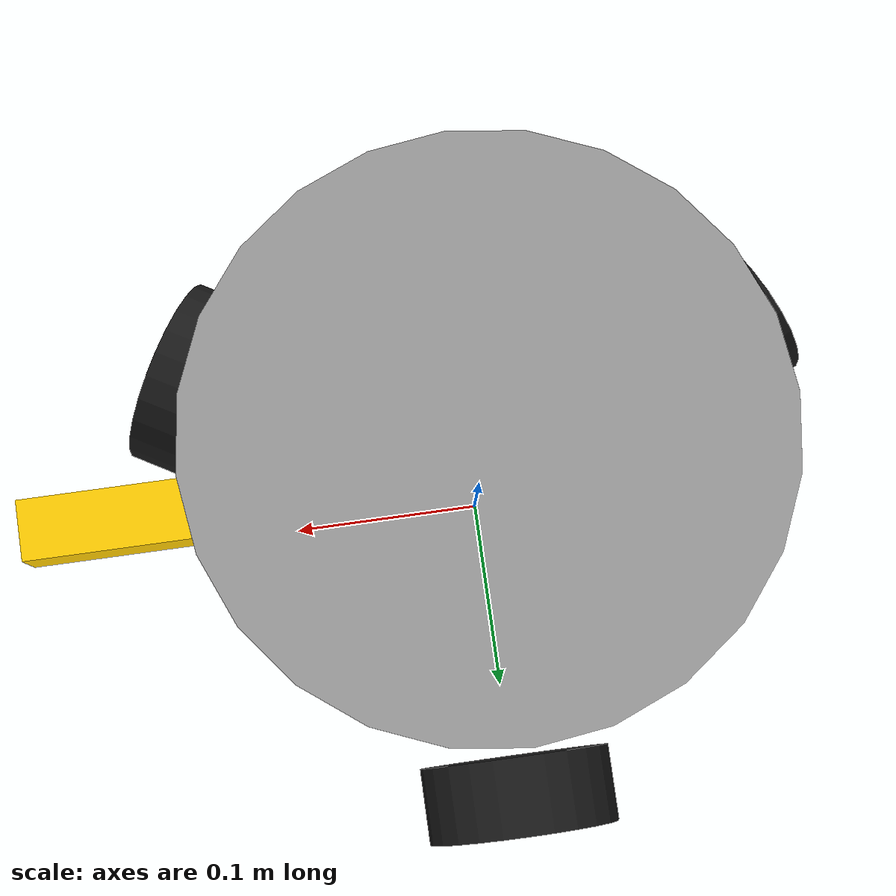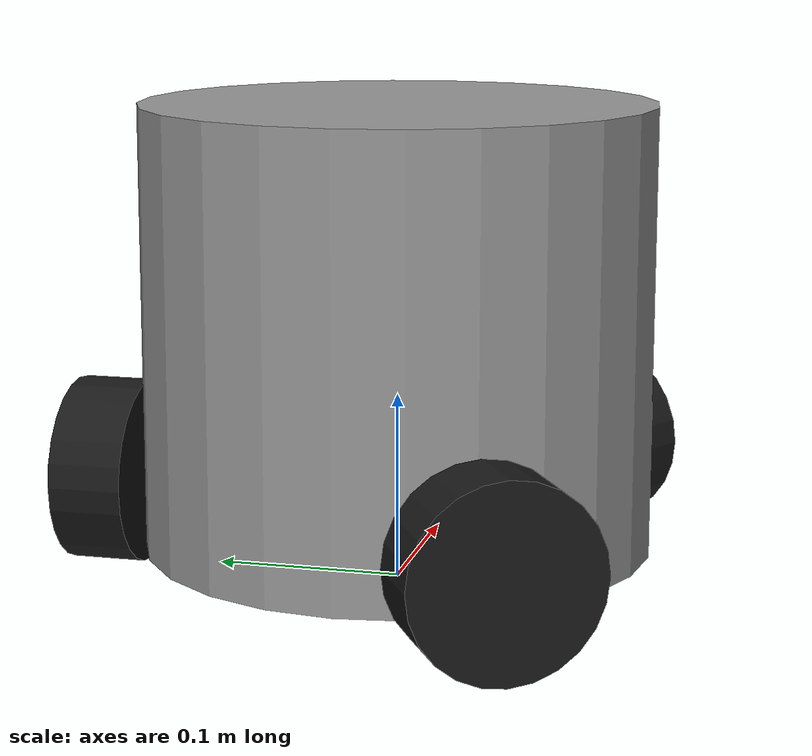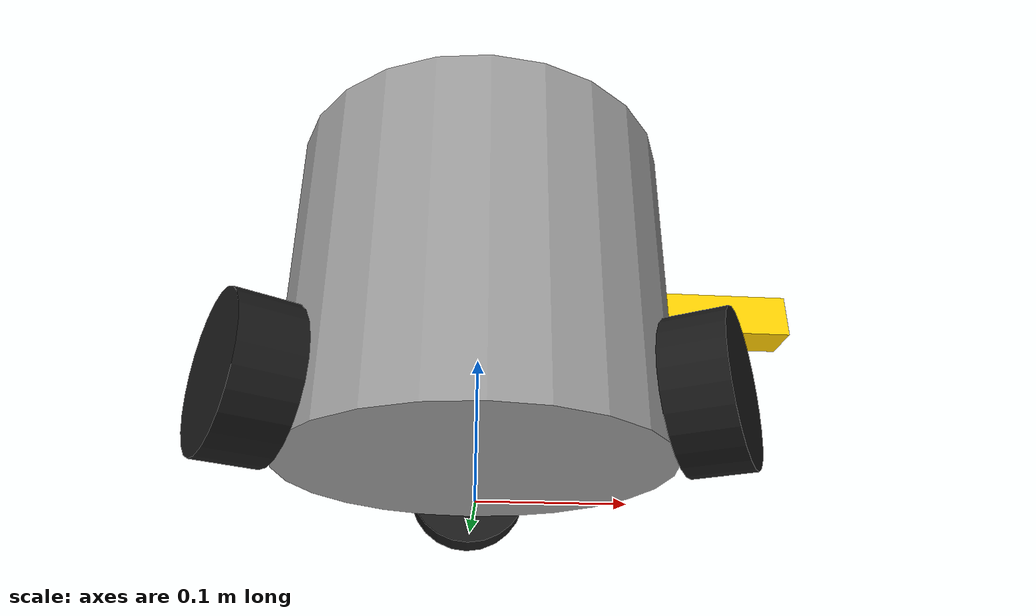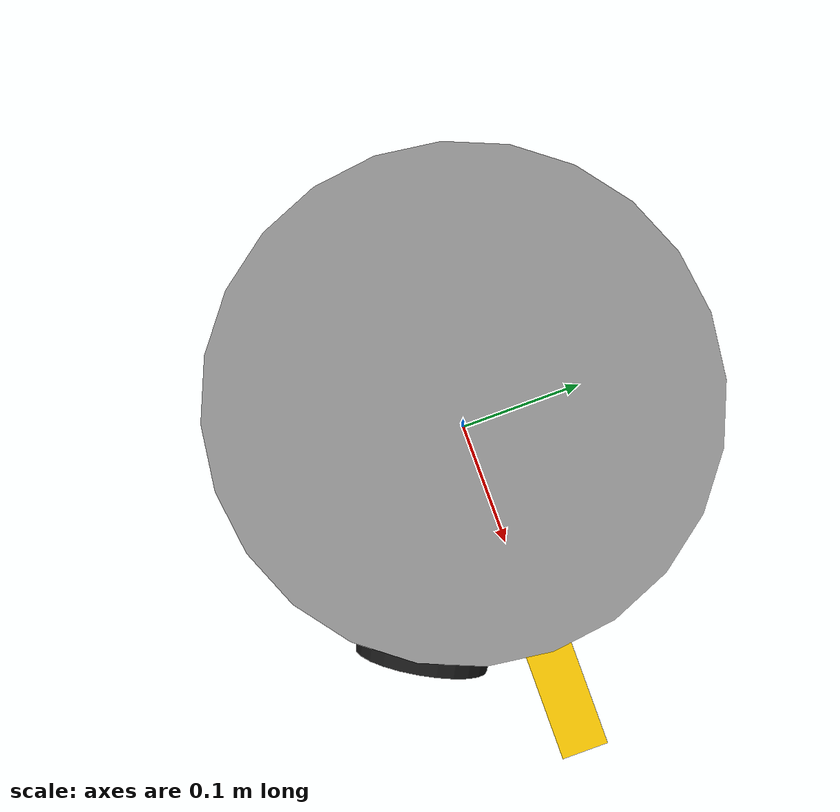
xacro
<?xml version="1.0"?>
<robot name="omni_bot" xmlns:xacro="http://www.ros.org/wiki/xacro">

  <xacro:property name="base_radius" value="0.135"/>
  <xacro:property name="base_height" value="0.235"/>
  <xacro:property name="ground_clearance" value="0.02"/>

  <!-- Heading marker ("face") dimensions -->
  <xacro:property name="face_length" value="0.10"/>
  <xacro:property name="face_width" value="0.03"/>

  <xacro:property name="wheel_radius" value="0.05"/>
  <xacro:property name="wheel_width" value="0.04"/>
  <xacro:property name="wheel_offset" value="0.16"/>

  <link name="base_footprint"/>

  <joint name="base_joint" type="fixed">
    <parent link="base_footprint"/>
    <child link="base_link"/>
    <origin xyz="0 0 ${ground_clearance + base_height/2}" rpy="0 0 0"/>
  </joint>

  <link name="base_link">
    <visual>
      <geometry><cylinder radius="${base_radius}" length="${base_height}"/></geometry>
      <material name="grey"><color rgba="0.6 0.6 0.6 1"/></material>
    </visual>
    <collision>
      <geometry><cylinder radius="${base_radius}" length="${base_height}"/></geometry>
    </collision>
    <inertial>
      <mass value="2.0"/>
      <inertia ixx="0.01" ixy="0" ixz="0" iyy="0.01" iyz="0" izz="0.02"/>
    </inertial>
  </link>

  <!-- Heading marker ("face"): yellow stick poking out of the robot's +x (front) side.
       Visual only, no collision, so it never affects motion. -->
  <link name="face_link">
    <visual>
      <geometry><box size="${face_length} ${face_width} ${face_width}"/></geometry>
      <material name="yellow"><color rgba="1 0.8 0 1"/></material>
    </visual>
    <inertial>
      <mass value="0.01"/>
      <inertia ixx="0.000001" ixy="0" ixz="0" iyy="0.000001" iyz="0" izz="0.000001"/>
    </inertial>
  </link>

  <joint name="face_joint" type="fixed">
    <parent link="base_link"/>
    <child link="face_link"/>
    <!-- centre it so ~0.09 m sticks out past the base edge (0.01 m overlaps into the body) -->
    <origin xyz="${base_radius + face_length/2 - 0.01} 0 0" rpy="0 0 0"/>
  </joint>

  <!-- Gazebo Classic often ignores URDF colours, so set it explicitly -->
  <gazebo reference="face_link">
    <material>Gazebo/Yellow</material>
  </gazebo>

  <xacro:macro name="omni_wheel" params="prefix angle_deg">
    <link name="${prefix}_wheel">
      <visual>
        <origin rpy="0 1.5708 0"/>
        <geometry><cylinder radius="${wheel_radius}" length="${wheel_width}"/></geometry>
        <material name="black"><color rgba="0.1 0.1 0.1 1"/></material>
      </visual>
      <collision>
        <origin rpy="0 1.5708 0"/>
        <geometry><cylinder radius="${wheel_radius}" length="${wheel_width}"/></geometry>
      </collision>
      <inertial>
        <mass value="0.1"/>
        <inertia ixx="0.0001" ixy="0" ixz="0" iyy="0.0001" iyz="0" izz="0.0001"/>
      </inertial>
    </link>

    <joint name="${prefix}_wheel_joint" type="continuous">
      <parent link="base_link"/>
      <child link="${prefix}_wheel"/>
      <origin xyz="${wheel_offset * cos(angle_deg * pi / 180)}
                   ${wheel_offset * sin(angle_deg * pi / 180)}
                   ${wheel_radius - (ground_clearance + base_height/2)}"
              rpy="0 0 ${angle_deg * pi / 180}"/>
      <axis xyz="1 0 0"/>
    </joint>
  </xacro:macro>

  <xacro:omni_wheel prefix="wheel1" angle_deg="90"/>
  <xacro:omni_wheel prefix="wheel2" angle_deg="210"/>
  <xacro:omni_wheel prefix="wheel3" angle_deg="330"/>

  <gazebo>
    <plugin name="omni_drive" filename="libgazebo_ros_planar_move.so">
      <ros>
        <namespace>/omni_bot</namespace>
        <remapping>cmd_vel:=cmd_vel</remapping>
        <remapping>odom:=odom</remapping>
      </ros>
      <update_rate>50</update_rate>
      <publish_odom>true</publish_odom>
      <publish_odom_tf>true</publish_odom_tf>
      <odometry_frame>odom</odometry_frame>
      <robot_base_frame>base_link</robot_base_frame>
    </plugin>
  </gazebo>

</robot>
